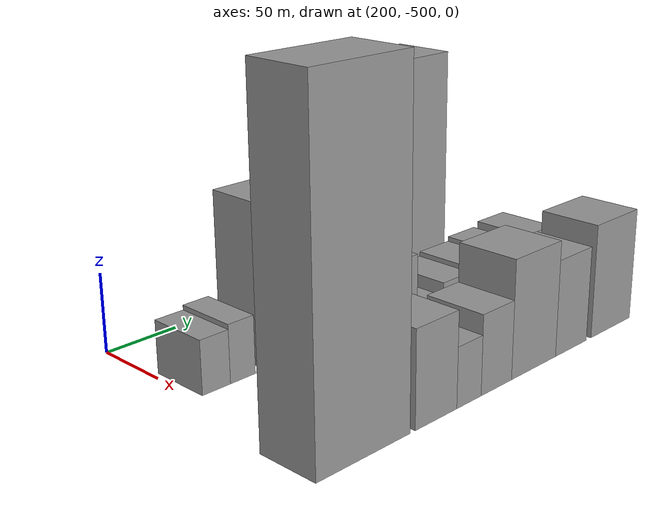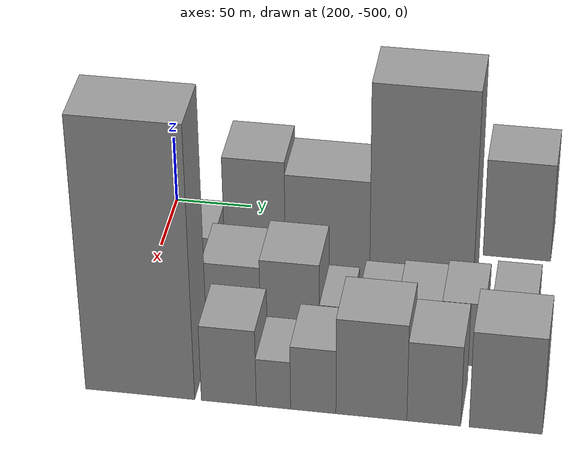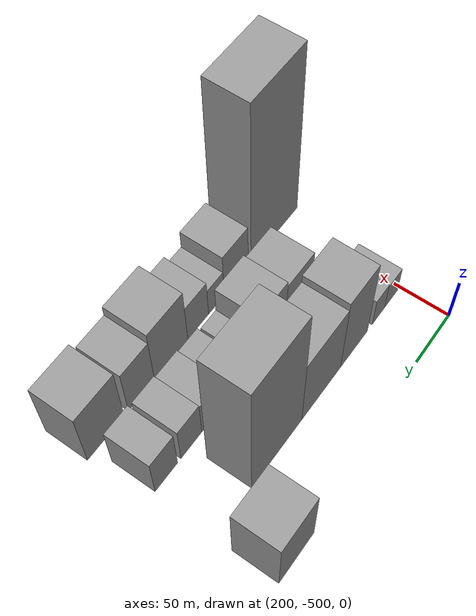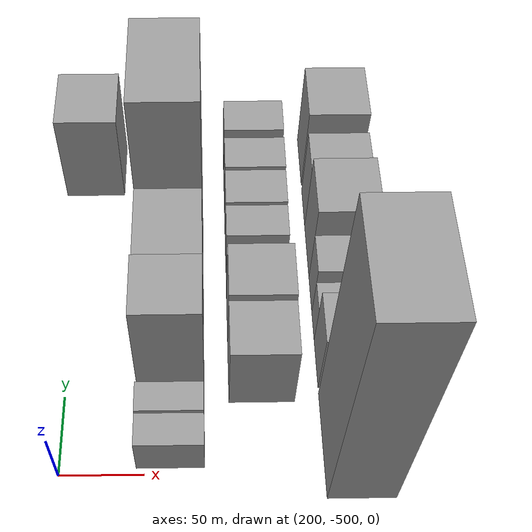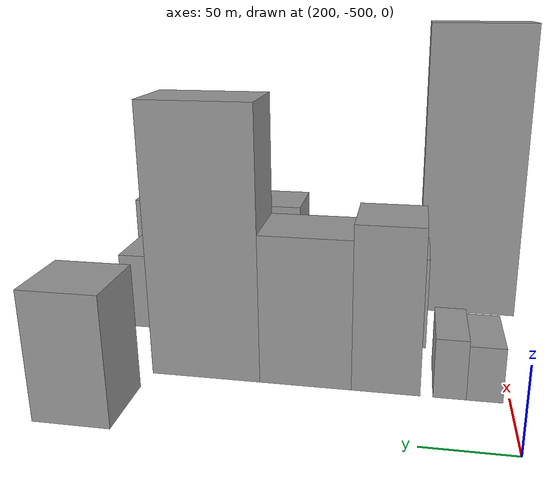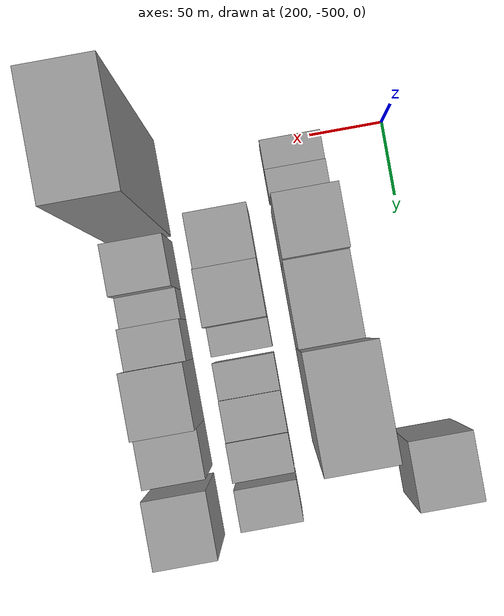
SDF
<sdf version="1.6">
 <world name="default">
  <model name="building_127">
   <static>1</static>
   <pose>210.0000 -271.5386 0 0.000000 0.000000 0.000000</pose>
   <link name="link">
    <pose>0 0 37.50 0 0 0</pose>
    <collision name="collision"><geometry><box><size>40.0000 43.4330 75.0000</size></box></geometry></collision>
    <visual name="visual">
     <cast_shadows>0</cast_shadows>
     <geometry><box><size>40.0000 43.4330 75.0000</size></box></geometry>
     <material>
      <script>
       <uri>model://grey_wall/materials/scripts</uri>
       <uri>model://grey_wall/materials/textures</uri>
       <name>vrc/grey_wall</name>
      </script>
     </material>
    </visual>
   </link>
  </model>
  <model name="building_171">
   <static>1</static>
   <pose>265.0000 -486.2040 0 0.000000 0.000000 0.000000</pose>
   <link name="link">
    <pose>0 0 16.50 0 0 0</pose>
    <collision name="collision"><geometry><box><size>40.0000 19.7202 33.0000</size></box></geometry></collision>
    <visual name="visual">
     <cast_shadows>0</cast_shadows>
     <geometry><box><size>40.0000 19.7202 33.0000</size></box></geometry>
     <material>
      <script>
       <uri>model://grey_wall/materials/scripts</uri>
       <uri>model://grey_wall/materials/textures</uri>
       <name>vrc/grey_wall</name>
      </script>
     </material>
    </visual>
   </link>
  </model>
  <model name="building_172">
   <static>1</static>
   <pose>265.0000 -467.2235 0 0.000000 0.000000 0.000000</pose>
   <link name="link">
    <pose>0 0 18.00 0 0 0</pose>
    <collision name="collision"><geometry><box><size>40.0000 18.2410 36.0000</size></box></geometry></collision>
    <visual name="visual">
     <cast_shadows>0</cast_shadows>
     <geometry><box><size>40.0000 18.2410 36.0000</size></box></geometry>
     <material>
      <script>
       <uri>model://grey_wall/materials/scripts</uri>
       <uri>model://grey_wall/materials/textures</uri>
       <name>vrc/grey_wall</name>
      </script>
     </material>
    </visual>
   </link>
  </model>
  <model name="building_173">
   <static>1</static>
   <pose>265.0000 -431.8318 0 0.000000 0.000000 0.000000</pose>
   <link name="link">
    <pose>0 0 49.50 0 0 0</pose>
    <collision name="collision"><geometry><box><size>40.0000 38.5423 99.0000</size></box></geometry></collision>
    <visual name="visual">
     <cast_shadows>0</cast_shadows>
     <geometry><box><size>40.0000 38.5423 99.0000</size></box></geometry>
     <material>
      <script>
       <uri>model://grey_wall/materials/scripts</uri>
       <uri>model://grey_wall/materials/textures</uri>
       <name>vrc/grey_wall</name>
      </script>
     </material>
    </visual>
   </link>
  </model>
  <model name="building_174">
   <static>1</static>
   <pose>265.0000 -386.0556 0 0.000000 0.000000 0.000000</pose>
   <link name="link">
    <pose>0 0 45.00 0 0 0</pose>
    <collision name="collision"><geometry><box><size>40.0000 53.0102 90.0000</size></box></geometry></collision>
    <visual name="visual">
     <cast_shadows>0</cast_shadows>
     <geometry><box><size>40.0000 53.0102 90.0000</size></box></geometry>
     <material>
      <script>
       <uri>model://grey_wall/materials/scripts</uri>
       <uri>model://grey_wall/materials/textures</uri>
       <name>vrc/grey_wall</name>
      </script>
     </material>
    </visual>
   </link>
  </model>
  <model name="building_175">
   <static>1</static>
   <pose>265.0000 -327.1601 0 0.000000 0.000000 0.000000</pose>
   <link name="link">
    <pose>0 0 81.00 0 0 0</pose>
    <collision name="collision"><geometry><box><size>40.0000 64.7807 162.0000</size></box></geometry></collision>
    <visual name="visual">
     <cast_shadows>0</cast_shadows>
     <geometry><box><size>40.0000 64.7807 162.0000</size></box></geometry>
     <material>
      <script>
       <uri>model://grey_wall/materials/scripts</uri>
       <uri>model://grey_wall/materials/textures</uri>
       <name>vrc/grey_wall</name>
      </script>
     </material>
    </visual>
   </link>
  </model>
  <model name="building_223">
   <static>1</static>
   <pose>320.0000 -436.7740 0 0.000000 0.000000 0.000000</pose>
   <link name="link">
    <pose>0 0 30.00 0 0 0</pose>
    <collision name="collision"><geometry><box><size>40.0000 35.5889 60.0000</size></box></geometry></collision>
    <visual name="visual">
     <cast_shadows>0</cast_shadows>
     <geometry><box><size>40.0000 35.5889 60.0000</size></box></geometry>
     <material>
      <script>
       <uri>model://grey_wall/materials/scripts</uri>
       <uri>model://grey_wall/materials/textures</uri>
       <name>vrc/grey_wall</name>
      </script>
     </material>
    </visual>
   </link>
  </model>
  <model name="building_224">
   <static>1</static>
   <pose>320.0000 -400.8608 0 0.000000 0.000000 0.000000</pose>
   <link name="link">
    <pose>0 0 33.00 0 0 0</pose>
    <collision name="collision"><geometry><box><size>40.0000 36.2374 66.0000</size></box></geometry></collision>
    <visual name="visual">
     <cast_shadows>0</cast_shadows>
     <geometry><box><size>40.0000 36.2374 66.0000</size></box></geometry>
     <material>
      <script>
       <uri>model://grey_wall/materials/scripts</uri>
       <uri>model://grey_wall/materials/textures</uri>
       <name>vrc/grey_wall</name>
      </script>
     </material>
    </visual>
   </link>
  </model>
  <model name="building_225">
   <static>1</static>
   <pose>320.0000 -373.2151 0 0.000000 0.000000 0.000000</pose>
   <link name="link">
    <pose>0 0 18.00 0 0 0</pose>
    <collision name="collision"><geometry><box><size>40.0000 19.0541 36.0000</size></box></geometry></collision>
    <visual name="visual">
     <cast_shadows>0</cast_shadows>
     <geometry><box><size>40.0000 19.0541 36.0000</size></box></geometry>
     <material>
      <script>
       <uri>model://grey_wall/materials/scripts</uri>
       <uri>model://grey_wall/materials/textures</uri>
       <name>vrc/grey_wall</name>
      </script>
     </material>
    </visual>
   </link>
  </model>
  <model name="building_226">
   <static>1</static>
   <pose>320.0000 -347.6322 0 0.000000 0.000000 0.000000</pose>
   <link name="link">
    <pose>0 0 21.00 0 0 0</pose>
    <collision name="collision"><geometry><box><size>40.0000 24.1118 42.0000</size></box></geometry></collision>
    <visual name="visual">
     <cast_shadows>0</cast_shadows>
     <geometry><box><size>40.0000 24.1118 42.0000</size></box></geometry>
     <material>
      <script>
       <uri>model://grey_wall/materials/scripts</uri>
       <uri>model://grey_wall/materials/textures</uri>
       <name>vrc/grey_wall</name>
      </script>
     </material>
    </visual>
   </link>
  </model>
  <model name="building_227">
   <static>1</static>
   <pose>320.0000 -322.1634 0 0.000000 0.000000 0.000000</pose>
   <link name="link">
    <pose>0 0 22.50 0 0 0</pose>
    <collision name="collision"><geometry><box><size>40.0000 26.8257 45.0000</size></box></geometry></collision>
    <visual name="visual">
     <cast_shadows>0</cast_shadows>
     <geometry><box><size>40.0000 26.8257 45.0000</size></box></geometry>
     <material>
      <script>
       <uri>model://grey_wall/materials/scripts</uri>
       <uri>model://grey_wall/materials/textures</uri>
       <name>vrc/grey_wall</name>
      </script>
     </material>
    </visual>
   </link>
  </model>
  <model name="building_228">
   <static>1</static>
   <pose>320.0000 -296.0032 0 0.000000 0.000000 0.000000</pose>
   <link name="link">
    <pose>0 0 24.00 0 0 0</pose>
    <collision name="collision"><geometry><box><size>40.0000 25.4947 48.0000</size></box></geometry></collision>
    <visual name="visual">
     <cast_shadows>0</cast_shadows>
     <geometry><box><size>40.0000 25.4947 48.0000</size></box></geometry>
     <material>
      <script>
       <uri>model://grey_wall/materials/scripts</uri>
       <uri>model://grey_wall/materials/textures</uri>
       <name>vrc/grey_wall</name>
      </script>
     </material>
    </visual>
   </link>
  </model>
  <model name="building_229">
   <static>1</static>
   <pose>320.0000 -265.9018 0 0.000000 0.000000 0.000000</pose>
   <link name="link">
    <pose>0 0 25.50 0 0 0</pose>
    <collision name="collision"><geometry><box><size>40.0000 26.7082 51.0000</size></box></geometry></collision>
    <visual name="visual">
     <cast_shadows>0</cast_shadows>
     <geometry><box><size>40.0000 26.7082 51.0000</size></box></geometry>
     <material>
      <script>
       <uri>model://grey_wall/materials/scripts</uri>
       <uri>model://grey_wall/materials/textures</uri>
       <name>vrc/grey_wall</name>
      </script>
     </material>
    </visual>
   </link>
  </model>
  <model name="building_274">
   <static>1</static>
   <pose>375.0000 -482.4165 0 0.000000 0.000000 0.000000</pose>
   <link name="link">
    <pose>0 0 99.00 0 0 0</pose>
    <collision name="collision"><geometry><box><size>40.0000 66.2709 198.0000</size></box></geometry></collision>
    <visual name="visual">
     <cast_shadows>0</cast_shadows>
     <geometry><box><size>40.0000 66.2709 198.0000</size></box></geometry>
     <material>
      <script>
       <uri>model://grey_wall/materials/scripts</uri>
       <uri>model://grey_wall/materials/textures</uri>
       <name>vrc/grey_wall</name>
      </script>
     </material>
    </visual>
   </link>
  </model>
  <model name="building_275">
   <static>1</static>
   <pose>375.0000 -428.7172 0 0.000000 0.000000 0.000000</pose>
   <link name="link">
    <pose>0 0 28.50 0 0 0</pose>
    <collision name="collision"><geometry><box><size>40.0000 33.1277 57.0000</size></box></geometry></collision>
    <visual name="visual">
     <cast_shadows>0</cast_shadows>
     <geometry><box><size>40.0000 33.1277 57.0000</size></box></geometry>
     <material>
      <script>
       <uri>model://grey_wall/materials/scripts</uri>
       <uri>model://grey_wall/materials/textures</uri>
       <name>vrc/grey_wall</name>
      </script>
     </material>
    </visual>
   </link>
  </model>
  <model name="building_276">
   <static>1</static>
   <pose>375.0000 -401.8775 0 0.000000 0.000000 0.000000</pose>
   <link name="link">
    <pose>0 0 18.00 0 0 0</pose>
    <collision name="collision"><geometry><box><size>40.0000 20.5517 36.0000</size></box></geometry></collision>
    <visual name="visual">
     <cast_shadows>0</cast_shadows>
     <geometry><box><size>40.0000 20.5517 36.0000</size></box></geometry>
     <material>
      <script>
       <uri>model://grey_wall/materials/scripts</uri>
       <uri>model://grey_wall/materials/textures</uri>
       <name>vrc/grey_wall</name>
      </script>
     </material>
    </visual>
   </link>
  </model>
  <model name="building_277">
   <static>1</static>
   <pose>375.0000 -378.0465 0 0.000000 0.000000 0.000000</pose>
   <link name="link">
    <pose>0 0 24.00 0 0 0</pose>
    <collision name="collision"><geometry><box><size>40.0000 27.1101 48.0000</size></box></geometry></collision>
    <visual name="visual">
     <cast_shadows>0</cast_shadows>
     <geometry><box><size>40.0000 27.1101 48.0000</size></box></geometry>
     <material>
      <script>
       <uri>model://grey_wall/materials/scripts</uri>
       <uri>model://grey_wall/materials/textures</uri>
       <name>vrc/grey_wall</name>
      </script>
     </material>
    </visual>
   </link>
  </model>
  <model name="building_278">
   <static>1</static>
   <pose>375.0000 -343.4576 0 0.000000 0.000000 0.000000</pose>
   <link name="link">
    <pose>0 0 36.00 0 0 0</pose>
    <collision name="collision"><geometry><box><size>40.0000 42.0677 72.0000</size></box></geometry></collision>
    <visual name="visual">
     <cast_shadows>0</cast_shadows>
     <geometry><box><size>40.0000 42.0677 72.0000</size></box></geometry>
     <material>
      <script>
       <uri>model://grey_wall/materials/scripts</uri>
       <uri>model://grey_wall/materials/textures</uri>
       <name>vrc/grey_wall</name>
      </script>
     </material>
    </visual>
   </link>
  </model>
  <model name="building_279">
   <static>1</static>
   <pose>375.0000 -306.5464 0 0.000000 0.000000 0.000000</pose>
   <link name="link">
    <pose>0 0 30.00 0 0 0</pose>
    <collision name="collision"><geometry><box><size>40.0000 31.7548 60.0000</size></box></geometry></collision>
    <visual name="visual">
     <cast_shadows>0</cast_shadows>
     <geometry><box><size>40.0000 31.7548 60.0000</size></box></geometry>
     <material>
      <script>
       <uri>model://grey_wall/materials/scripts</uri>
       <uri>model://grey_wall/materials/textures</uri>
       <name>vrc/grey_wall</name>
      </script>
     </material>
    </visual>
   </link>
  </model>
  <model name="building_280">
   <static>1</static>
   <pose>375.0000 -264.2446 0 0.000000 0.000000 0.000000</pose>
   <link name="link">
    <pose>0 0 36.00 0 0 0</pose>
    <collision name="collision"><geometry><box><size>40.0000 42.8487 72.0000</size></box></geometry></collision>
    <visual name="visual">
     <cast_shadows>0</cast_shadows>
     <geometry><box><size>40.0000 42.8487 72.0000</size></box></geometry>
     <material>
      <script>
       <uri>model://grey_wall/materials/scripts</uri>
       <uri>model://grey_wall/materials/textures</uri>
       <name>vrc/grey_wall</name>
      </script>
     </material>
    </visual>
   </link>
  </model>
 </world>
</sdf>
